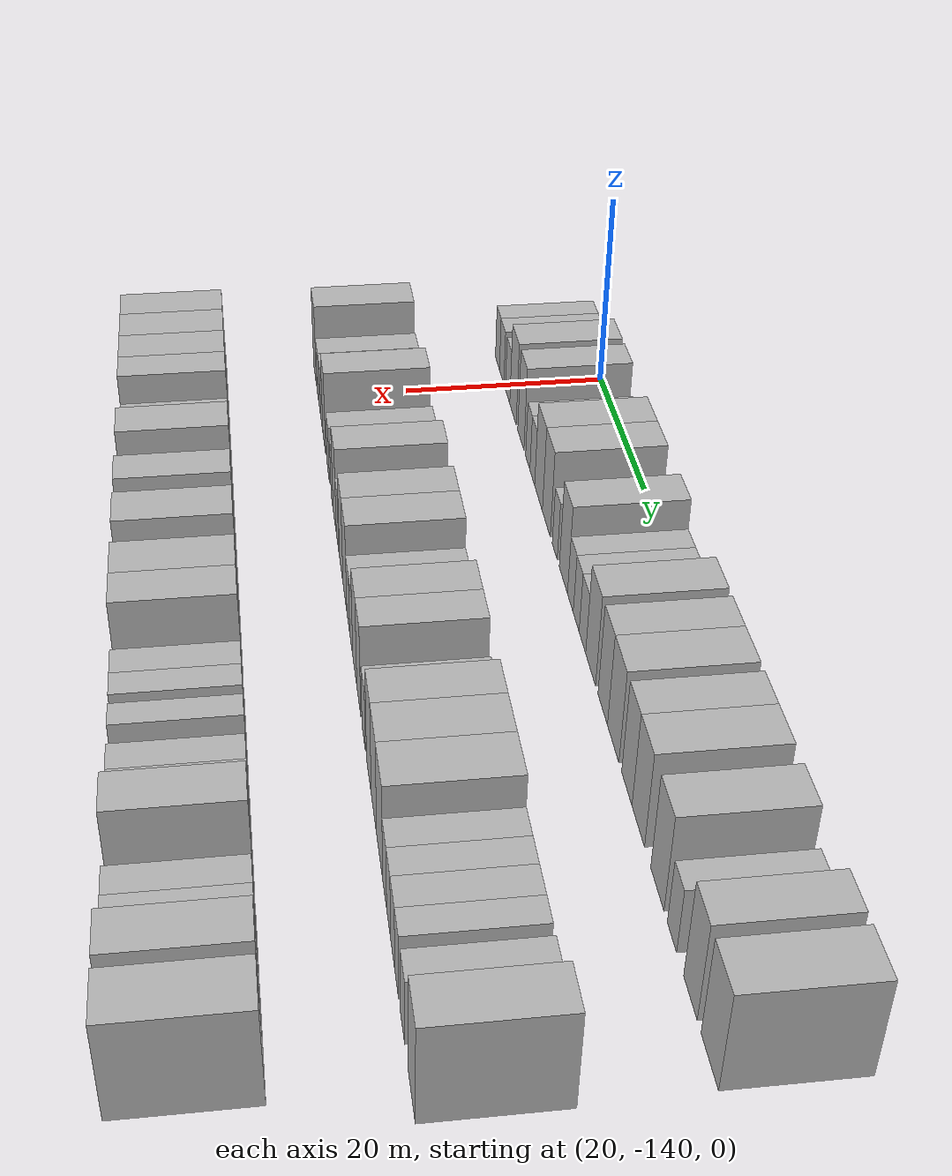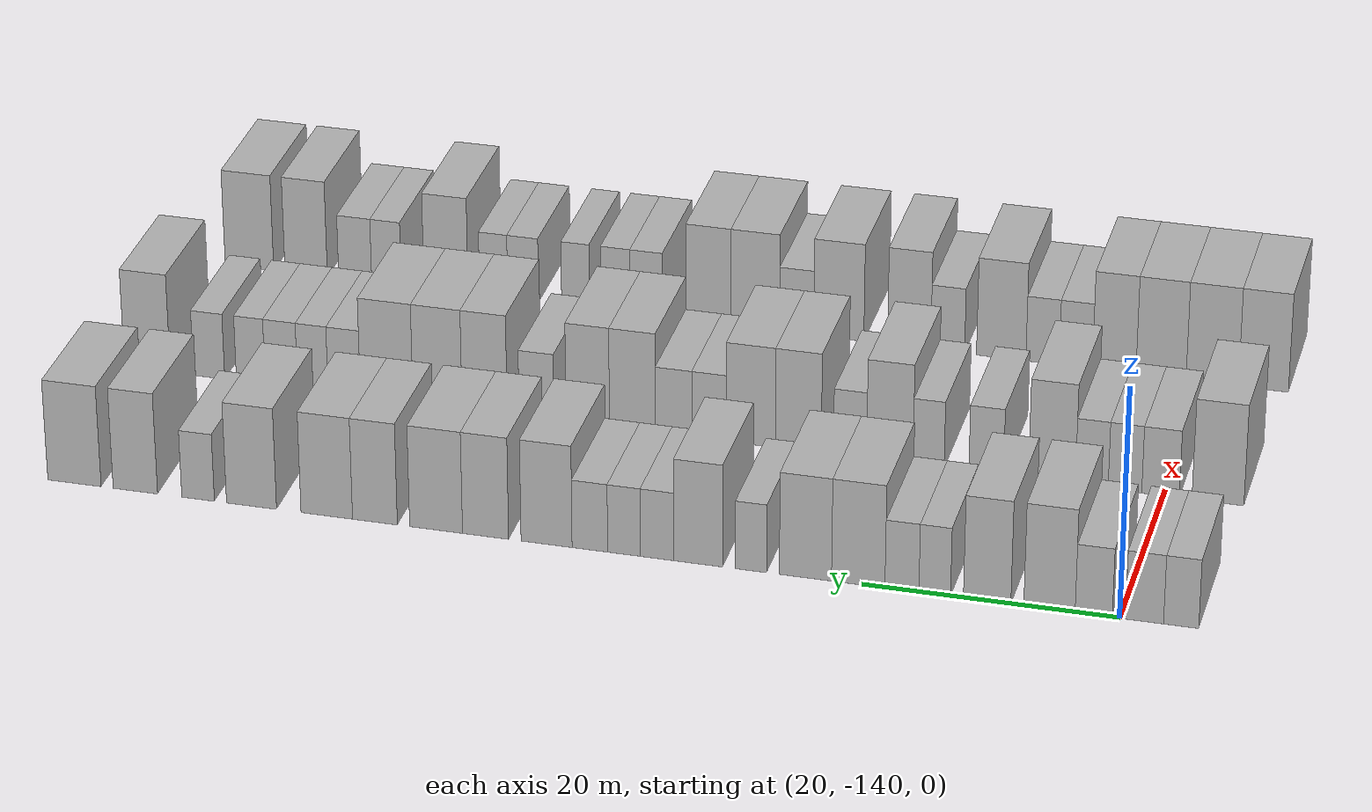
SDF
<sdf version="1.6">
 <world name="default">
  <model name="building_24">
   <static>1</static>
   <pose>25.0000 -144.6269 0 0.000000 0.000000 0.000000</pose>
   <link name="link">
    <pose>0 0 3.00 0 0 0</pose>
    <collision name="collision"><geometry><box><size>10.0000 2.6872 6.0000</size></box></geometry></collision>
    <visual name="visual">
     <cast_shadows>0</cast_shadows>
     <geometry><box><size>10.0000 2.6872 6.0000</size></box></geometry>
     <material>
      <script>
       <uri>model://HANNAS_wall/materials/scripts</uri>
       <uri>model://HANNAS_wall/materials/textures</uri>
       <name>vrc/HANNAS_wall</name>
      </script>
     </material>
    </visual>
   </link>
  </model>
  <model name="building_25">
   <static>1</static>
   <pose>25.0000 -141.8265 0 0.000000 0.000000 0.000000</pose>
   <link name="link">
    <pose>0 0 3.00 0 0 0</pose>
    <collision name="collision"><geometry><box><size>10.0000 2.9137 6.0000</size></box></geometry></collision>
    <visual name="visual">
     <cast_shadows>0</cast_shadows>
     <geometry><box><size>10.0000 2.9137 6.0000</size></box></geometry>
     <material>
      <script>
       <uri>model://HANNAS_wall/materials/scripts</uri>
       <uri>model://HANNAS_wall/materials/textures</uri>
       <name>vrc/HANNAS_wall</name>
      </script>
     </material>
    </visual>
   </link>
  </model>
  <model name="building_26">
   <static>1</static>
   <pose>25.0000 -137.9409 0 0.000000 0.000000 0.000000</pose>
   <link name="link">
    <pose>0 0 3.00 0 0 0</pose>
    <collision name="collision"><geometry><box><size>10.0000 2.8574 6.0000</size></box></geometry></collision>
    <visual name="visual">
     <cast_shadows>0</cast_shadows>
     <geometry><box><size>10.0000 2.8574 6.0000</size></box></geometry>
     <material>
      <script>
       <uri>model://HANNAS_wall/materials/scripts</uri>
       <uri>model://HANNAS_wall/materials/textures</uri>
       <name>vrc/HANNAS_wall</name>
      </script>
     </material>
    </visual>
   </link>
  </model>
  <model name="building_27">
   <static>1</static>
   <pose>25.0000 -134.5359 0 0.000000 0.000000 0.000000</pose>
   <link name="link">
    <pose>0 0 4.50 0 0 0</pose>
    <collision name="collision"><geometry><box><size>10.0000 3.9525 9.0000</size></box></geometry></collision>
    <visual name="visual">
     <cast_shadows>0</cast_shadows>
     <geometry><box><size>10.0000 3.9525 9.0000</size></box></geometry>
     <material>
      <script>
       <uri>model://HANNAS_wall/materials/scripts</uri>
       <uri>model://HANNAS_wall/materials/textures</uri>
       <name>vrc/HANNAS_wall</name>
      </script>
     </material>
    </visual>
   </link>
  </model>
  <model name="building_28">
   <static>1</static>
   <pose>25.0000 -129.7239 0 0.000000 0.000000 0.000000</pose>
   <link name="link">
    <pose>0 0 4.50 0 0 0</pose>
    <collision name="collision"><geometry><box><size>10.0000 3.6714 9.0000</size></box></geometry></collision>
    <visual name="visual">
     <cast_shadows>0</cast_shadows>
     <geometry><box><size>10.0000 3.6714 9.0000</size></box></geometry>
     <material>
      <script>
       <uri>model://HANNAS_wall/materials/scripts</uri>
       <uri>model://HANNAS_wall/materials/textures</uri>
       <name>vrc/HANNAS_wall</name>
      </script>
     </material>
    </visual>
   </link>
  </model>
  <model name="building_29">
   <static>1</static>
   <pose>25.0000 -125.6593 0 0.000000 0.000000 0.000000</pose>
   <link name="link">
    <pose>0 0 3.00 0 0 0</pose>
    <collision name="collision"><geometry><box><size>10.0000 2.4579 6.0000</size></box></geometry></collision>
    <visual name="visual">
     <cast_shadows>0</cast_shadows>
     <geometry><box><size>10.0000 2.4579 6.0000</size></box></geometry>
     <material>
      <script>
       <uri>model://HANNAS_wall/materials/scripts</uri>
       <uri>model://HANNAS_wall/materials/textures</uri>
       <name>vrc/HANNAS_wall</name>
      </script>
     </material>
    </visual>
   </link>
  </model>
  <model name="building_30">
   <static>1</static>
   <pose>25.0000 -123.1066 0 0.000000 0.000000 0.000000</pose>
   <link name="link">
    <pose>0 0 3.00 0 0 0</pose>
    <collision name="collision"><geometry><box><size>10.0000 2.6475 6.0000</size></box></geometry></collision>
    <visual name="visual">
     <cast_shadows>0</cast_shadows>
     <geometry><box><size>10.0000 2.6475 6.0000</size></box></geometry>
     <material>
      <script>
       <uri>model://HANNAS_wall/materials/scripts</uri>
       <uri>model://HANNAS_wall/materials/textures</uri>
       <name>vrc/HANNAS_wall</name>
      </script>
     </material>
    </visual>
   </link>
  </model>
  <model name="building_31">
   <static>1</static>
   <pose>25.0000 -119.6929 0 0.000000 0.000000 0.000000</pose>
   <link name="link">
    <pose>0 0 4.50 0 0 0</pose>
    <collision name="collision"><geometry><box><size>10.0000 4.1798 9.0000</size></box></geometry></collision>
    <visual name="visual">
     <cast_shadows>0</cast_shadows>
     <geometry><box><size>10.0000 4.1798 9.0000</size></box></geometry>
     <material>
      <script>
       <uri>model://HANNAS_wall/materials/scripts</uri>
       <uri>model://HANNAS_wall/materials/textures</uri>
       <name>vrc/HANNAS_wall</name>
      </script>
     </material>
    </visual>
   </link>
  </model>
  <model name="building_32">
   <static>1</static>
   <pose>25.0000 -115.5559 0 0.000000 0.000000 0.000000</pose>
   <link name="link">
    <pose>0 0 4.50 0 0 0</pose>
    <collision name="collision"><geometry><box><size>10.0000 4.0942 9.0000</size></box></geometry></collision>
    <visual name="visual">
     <cast_shadows>0</cast_shadows>
     <geometry><box><size>10.0000 4.0942 9.0000</size></box></geometry>
     <material>
      <script>
       <uri>model://HANNAS_wall/materials/scripts</uri>
       <uri>model://HANNAS_wall/materials/textures</uri>
       <name>vrc/HANNAS_wall</name>
      </script>
     </material>
    </visual>
   </link>
  </model>
  <model name="building_33">
   <static>1</static>
   <pose>25.0000 -111.2703 0 0.000000 0.000000 0.000000</pose>
   <link name="link">
    <pose>0 0 3.00 0 0 0</pose>
    <collision name="collision"><geometry><box><size>10.0000 2.4771 6.0000</size></box></geometry></collision>
    <visual name="visual">
     <cast_shadows>0</cast_shadows>
     <geometry><box><size>10.0000 2.4771 6.0000</size></box></geometry>
     <material>
      <script>
       <uri>model://HANNAS_wall/materials/scripts</uri>
       <uri>model://HANNAS_wall/materials/textures</uri>
       <name>vrc/HANNAS_wall</name>
      </script>
     </material>
    </visual>
   </link>
  </model>
  <model name="building_34">
   <static>1</static>
   <pose>25.0000 -107.0902 0 0.000000 0.000000 0.000000</pose>
   <link name="link">
    <pose>0 0 4.50 0 0 0</pose>
    <collision name="collision"><geometry><box><size>10.0000 3.8831 9.0000</size></box></geometry></collision>
    <visual name="visual">
     <cast_shadows>0</cast_shadows>
     <geometry><box><size>10.0000 3.8831 9.0000</size></box></geometry>
     <material>
      <script>
       <uri>model://HANNAS_wall/materials/scripts</uri>
       <uri>model://HANNAS_wall/materials/textures</uri>
       <name>vrc/HANNAS_wall</name>
      </script>
     </material>
    </visual>
   </link>
  </model>
  <model name="building_35">
   <static>1</static>
   <pose>25.0000 -103.8325 0 0.000000 0.000000 0.000000</pose>
   <link name="link">
    <pose>0 0 3.00 0 0 0</pose>
    <collision name="collision"><geometry><box><size>10.0000 2.6325 6.0000</size></box></geometry></collision>
    <visual name="visual">
     <cast_shadows>0</cast_shadows>
     <geometry><box><size>10.0000 2.6325 6.0000</size></box></geometry>
     <material>
      <script>
       <uri>model://HANNAS_wall/materials/scripts</uri>
       <uri>model://HANNAS_wall/materials/textures</uri>
       <name>vrc/HANNAS_wall</name>
      </script>
     </material>
    </visual>
   </link>
  </model>
  <model name="building_36">
   <static>1</static>
   <pose>25.0000 -101.2096 0 0.000000 0.000000 0.000000</pose>
   <link name="link">
    <pose>0 0 3.00 0 0 0</pose>
    <collision name="collision"><geometry><box><size>10.0000 2.6132 6.0000</size></box></geometry></collision>
    <visual name="visual">
     <cast_shadows>0</cast_shadows>
     <geometry><box><size>10.0000 2.6132 6.0000</size></box></geometry>
     <material>
      <script>
       <uri>model://HANNAS_wall/materials/scripts</uri>
       <uri>model://HANNAS_wall/materials/textures</uri>
       <name>vrc/HANNAS_wall</name>
      </script>
     </material>
    </visual>
   </link>
  </model>
  <model name="building_37">
   <static>1</static>
   <pose>25.0000 -98.4836 0 0.000000 0.000000 0.000000</pose>
   <link name="link">
    <pose>0 0 3.00 0 0 0</pose>
    <collision name="collision"><geometry><box><size>10.0000 2.8388 6.0000</size></box></geometry></collision>
    <visual name="visual">
     <cast_shadows>0</cast_shadows>
     <geometry><box><size>10.0000 2.8388 6.0000</size></box></geometry>
     <material>
      <script>
       <uri>model://HANNAS_wall/materials/scripts</uri>
       <uri>model://HANNAS_wall/materials/textures</uri>
       <name>vrc/HANNAS_wall</name>
      </script>
     </material>
    </visual>
   </link>
  </model>
  <model name="building_38">
   <static>1</static>
   <pose>25.0000 -95.0189 0 0.000000 0.000000 0.000000</pose>
   <link name="link">
    <pose>0 0 4.50 0 0 0</pose>
    <collision name="collision"><geometry><box><size>10.0000 4.0907 9.0000</size></box></geometry></collision>
    <visual name="visual">
     <cast_shadows>0</cast_shadows>
     <geometry><box><size>10.0000 4.0907 9.0000</size></box></geometry>
     <material>
      <script>
       <uri>model://HANNAS_wall/materials/scripts</uri>
       <uri>model://HANNAS_wall/materials/textures</uri>
       <name>vrc/HANNAS_wall</name>
      </script>
     </material>
    </visual>
   </link>
  </model>
  <model name="building_39">
   <static>1</static>
   <pose>25.0000 -90.1166 0 0.000000 0.000000 0.000000</pose>
   <link name="link">
    <pose>0 0 4.50 0 0 0</pose>
    <collision name="collision"><geometry><box><size>10.0000 3.7139 9.0000</size></box></geometry></collision>
    <visual name="visual">
     <cast_shadows>0</cast_shadows>
     <geometry><box><size>10.0000 3.7139 9.0000</size></box></geometry>
     <material>
      <script>
       <uri>model://HANNAS_wall/materials/scripts</uri>
       <uri>model://HANNAS_wall/materials/textures</uri>
       <name>vrc/HANNAS_wall</name>
      </script>
     </material>
    </visual>
   </link>
  </model>
  <model name="building_40">
   <static>1</static>
   <pose>25.0000 -86.1214 0 0.000000 0.000000 0.000000</pose>
   <link name="link">
    <pose>0 0 4.50 0 0 0</pose>
    <collision name="collision"><geometry><box><size>10.0000 4.2764 9.0000</size></box></geometry></collision>
    <visual name="visual">
     <cast_shadows>0</cast_shadows>
     <geometry><box><size>10.0000 4.2764 9.0000</size></box></geometry>
     <material>
      <script>
       <uri>model://HANNAS_wall/materials/scripts</uri>
       <uri>model://HANNAS_wall/materials/textures</uri>
       <name>vrc/HANNAS_wall</name>
      </script>
     </material>
    </visual>
   </link>
  </model>
  <model name="building_41">
   <static>1</static>
   <pose>25.0000 -81.1622 0 0.000000 0.000000 0.000000</pose>
   <link name="link">
    <pose>0 0 4.50 0 0 0</pose>
    <collision name="collision"><geometry><box><size>10.0000 3.6420 9.0000</size></box></geometry></collision>
    <visual name="visual">
     <cast_shadows>0</cast_shadows>
     <geometry><box><size>10.0000 3.6420 9.0000</size></box></geometry>
     <material>
      <script>
       <uri>model://HANNAS_wall/materials/scripts</uri>
       <uri>model://HANNAS_wall/materials/textures</uri>
       <name>vrc/HANNAS_wall</name>
      </script>
     </material>
    </visual>
   </link>
  </model>
  <model name="building_42">
   <static>1</static>
   <pose>25.0000 -77.2369 0 0.000000 0.000000 0.000000</pose>
   <link name="link">
    <pose>0 0 4.50 0 0 0</pose>
    <collision name="collision"><geometry><box><size>10.0000 4.2085 9.0000</size></box></geometry></collision>
    <visual name="visual">
     <cast_shadows>0</cast_shadows>
     <geometry><box><size>10.0000 4.2085 9.0000</size></box></geometry>
     <material>
      <script>
       <uri>model://HANNAS_wall/materials/scripts</uri>
       <uri>model://HANNAS_wall/materials/textures</uri>
       <name>vrc/HANNAS_wall</name>
      </script>
     </material>
    </visual>
   </link>
  </model>
  <model name="building_43">
   <static>1</static>
   <pose>25.0000 -71.0786 0 0.000000 0.000000 0.000000</pose>
   <link name="link">
    <pose>0 0 4.50 0 0 0</pose>
    <collision name="collision"><geometry><box><size>10.0000 4.1080 9.0000</size></box></geometry></collision>
    <visual name="visual">
     <cast_shadows>0</cast_shadows>
     <geometry><box><size>10.0000 4.1080 9.0000</size></box></geometry>
     <material>
      <script>
       <uri>model://HANNAS_wall/materials/scripts</uri>
       <uri>model://HANNAS_wall/materials/textures</uri>
       <name>vrc/HANNAS_wall</name>
      </script>
     </material>
    </visual>
   </link>
  </model>
  <model name="building_44">
   <static>1</static>
   <pose>25.0000 -66.6794 0 0.000000 0.000000 0.000000</pose>
   <link name="link">
    <pose>0 0 3.00 0 0 0</pose>
    <collision name="collision"><geometry><box><size>10.0000 2.6904 6.0000</size></box></geometry></collision>
    <visual name="visual">
     <cast_shadows>0</cast_shadows>
     <geometry><box><size>10.0000 2.6904 6.0000</size></box></geometry>
     <material>
      <script>
       <uri>model://HANNAS_wall/materials/scripts</uri>
       <uri>model://HANNAS_wall/materials/textures</uri>
       <name>vrc/HANNAS_wall</name>
      </script>
     </material>
    </visual>
   </link>
  </model>
  <model name="building_45">
   <static>1</static>
   <pose>25.0000 -61.4915 0 0.000000 0.000000 0.000000</pose>
   <link name="link">
    <pose>0 0 4.50 0 0 0</pose>
    <collision name="collision"><geometry><box><size>10.0000 3.6855 9.0000</size></box></geometry></collision>
    <visual name="visual">
     <cast_shadows>0</cast_shadows>
     <geometry><box><size>10.0000 3.6855 9.0000</size></box></geometry>
     <material>
      <script>
       <uri>model://HANNAS_wall/materials/scripts</uri>
       <uri>model://HANNAS_wall/materials/textures</uri>
       <name>vrc/HANNAS_wall</name>
      </script>
     </material>
    </visual>
   </link>
  </model>
  <model name="building_46">
   <static>1</static>
   <pose>25.0000 -56.4312 0 0.000000 0.000000 0.000000</pose>
   <link name="link">
    <pose>0 0 4.50 0 0 0</pose>
    <collision name="collision"><geometry><box><size>10.0000 4.4351 9.0000</size></box></geometry></collision>
    <visual name="visual">
     <cast_shadows>0</cast_shadows>
     <geometry><box><size>10.0000 4.4351 9.0000</size></box></geometry>
     <material>
      <script>
       <uri>model://HANNAS_wall/materials/scripts</uri>
       <uri>model://HANNAS_wall/materials/textures</uri>
       <name>vrc/HANNAS_wall</name>
      </script>
     </material>
    </visual>
   </link>
  </model>
  <model name="building_140">
   <static>1</static>
   <pose>44.0000 -144.3010 0 0.000000 0.000000 0.000000</pose>
   <link name="link">
    <pose>0 0 4.50 0 0 0</pose>
    <collision name="collision"><geometry><box><size>10.0000 4.1107 9.0000</size></box></geometry></collision>
    <visual name="visual">
     <cast_shadows>0</cast_shadows>
     <geometry><box><size>10.0000 4.1107 9.0000</size></box></geometry>
     <material>
      <script>
       <uri>model://HANNAS_wall/materials/scripts</uri>
       <uri>model://HANNAS_wall/materials/textures</uri>
       <name>vrc/HANNAS_wall</name>
      </script>
     </material>
    </visual>
   </link>
  </model>
  <model name="building_141">
   <static>1</static>
   <pose>44.0000 -139.7518 0 0.000000 0.000000 0.000000</pose>
   <link name="link">
    <pose>0 0 3.00 0 0 0</pose>
    <collision name="collision"><geometry><box><size>10.0000 2.9876 6.0000</size></box></geometry></collision>
    <visual name="visual">
     <cast_shadows>0</cast_shadows>
     <geometry><box><size>10.0000 2.9876 6.0000</size></box></geometry>
     <material>
      <script>
       <uri>model://HANNAS_wall/materials/scripts</uri>
       <uri>model://HANNAS_wall/materials/textures</uri>
       <name>vrc/HANNAS_wall</name>
      </script>
     </material>
    </visual>
   </link>
  </model>
  <model name="building_142">
   <static>1</static>
   <pose>44.0000 -136.9187 0 0.000000 0.000000 0.000000</pose>
   <link name="link">
    <pose>0 0 3.00 0 0 0</pose>
    <collision name="collision"><geometry><box><size>10.0000 2.6786 6.0000</size></box></geometry></collision>
    <visual name="visual">
     <cast_shadows>0</cast_shadows>
     <geometry><box><size>10.0000 2.6786 6.0000</size></box></geometry>
     <material>
      <script>
       <uri>model://HANNAS_wall/materials/scripts</uri>
       <uri>model://HANNAS_wall/materials/textures</uri>
       <name>vrc/HANNAS_wall</name>
      </script>
     </material>
    </visual>
   </link>
  </model>
  <model name="building_143">
   <static>1</static>
   <pose>44.0000 -134.2683 0 0.000000 0.000000 0.000000</pose>
   <link name="link">
    <pose>0 0 3.00 0 0 0</pose>
    <collision name="collision"><geometry><box><size>10.0000 2.6223 6.0000</size></box></geometry></collision>
    <visual name="visual">
     <cast_shadows>0</cast_shadows>
     <geometry><box><size>10.0000 2.6223 6.0000</size></box></geometry>
     <material>
      <script>
       <uri>model://HANNAS_wall/materials/scripts</uri>
       <uri>model://HANNAS_wall/materials/textures</uri>
       <name>vrc/HANNAS_wall</name>
      </script>
     </material>
    </visual>
   </link>
  </model>
  <model name="building_144">
   <static>1</static>
   <pose>44.0000 -131.0765 0 0.000000 0.000000 0.000000</pose>
   <link name="link">
    <pose>0 0 4.50 0 0 0</pose>
    <collision name="collision"><geometry><box><size>10.0000 3.7611 9.0000</size></box></geometry></collision>
    <visual name="visual">
     <cast_shadows>0</cast_shadows>
     <geometry><box><size>10.0000 3.7611 9.0000</size></box></geometry>
     <material>
      <script>
       <uri>model://HANNAS_wall/materials/scripts</uri>
       <uri>model://HANNAS_wall/materials/textures</uri>
       <name>vrc/HANNAS_wall</name>
      </script>
     </material>
    </visual>
   </link>
  </model>
  <model name="building_145">
   <static>1</static>
   <pose>44.0000 -125.8027 0 0.000000 0.000000 0.000000</pose>
   <link name="link">
    <pose>0 0 3.00 0 0 0</pose>
    <collision name="collision"><geometry><box><size>10.0000 2.7865 6.0000</size></box></geometry></collision>
    <visual name="visual">
     <cast_shadows>0</cast_shadows>
     <geometry><box><size>10.0000 2.7865 6.0000</size></box></geometry>
     <material>
      <script>
       <uri>model://HANNAS_wall/materials/scripts</uri>
       <uri>model://HANNAS_wall/materials/textures</uri>
       <name>vrc/HANNAS_wall</name>
      </script>
     </material>
    </visual>
   </link>
  </model>
  <model name="building_146">
   <static>1</static>
   <pose>44.0000 -121.1441 0 0.000000 0.000000 0.000000</pose>
   <link name="link">
    <pose>0 0 3.00 0 0 0</pose>
    <collision name="collision"><geometry><box><size>10.0000 2.5308 6.0000</size></box></geometry></collision>
    <visual name="visual">
     <cast_shadows>0</cast_shadows>
     <geometry><box><size>10.0000 2.5308 6.0000</size></box></geometry>
     <material>
      <script>
       <uri>model://HANNAS_wall/materials/scripts</uri>
       <uri>model://HANNAS_wall/materials/textures</uri>
       <name>vrc/HANNAS_wall</name>
      </script>
     </material>
    </visual>
   </link>
  </model>
  <model name="building_147">
   <static>1</static>
   <pose>44.0000 -118.0000 0 0.000000 0.000000 0.000000</pose>
   <link name="link">
    <pose>0 0 4.50 0 0 0</pose>
    <collision name="collision"><geometry><box><size>10.0000 3.7573 9.0000</size></box></geometry></collision>
    <visual name="visual">
     <cast_shadows>0</cast_shadows>
     <geometry><box><size>10.0000 3.7573 9.0000</size></box></geometry>
     <material>
      <script>
       <uri>model://HANNAS_wall/materials/scripts</uri>
       <uri>model://HANNAS_wall/materials/textures</uri>
       <name>vrc/HANNAS_wall</name>
      </script>
     </material>
    </visual>
   </link>
  </model>
  <model name="building_148">
   <static>1</static>
   <pose>44.0000 -114.7746 0 0.000000 0.000000 0.000000</pose>
   <link name="link">
    <pose>0 0 3.00 0 0 0</pose>
    <collision name="collision"><geometry><box><size>10.0000 2.6935 6.0000</size></box></geometry></collision>
    <visual name="visual">
     <cast_shadows>0</cast_shadows>
     <geometry><box><size>10.0000 2.6935 6.0000</size></box></geometry>
     <material>
      <script>
       <uri>model://HANNAS_wall/materials/scripts</uri>
       <uri>model://HANNAS_wall/materials/textures</uri>
       <name>vrc/HANNAS_wall</name>
      </script>
     </material>
    </visual>
   </link>
  </model>
  <model name="building_149">
   <static>1</static>
   <pose>44.0000 -110.5500 0 0.000000 0.000000 0.000000</pose>
   <link name="link">
    <pose>0 0 4.50 0 0 0</pose>
    <collision name="collision"><geometry><box><size>10.0000 3.7556 9.0000</size></box></geometry></collision>
    <visual name="visual">
     <cast_shadows>0</cast_shadows>
     <geometry><box><size>10.0000 3.7556 9.0000</size></box></geometry>
     <material>
      <script>
       <uri>model://HANNAS_wall/materials/scripts</uri>
       <uri>model://HANNAS_wall/materials/textures</uri>
       <name>vrc/HANNAS_wall</name>
      </script>
     </material>
    </visual>
   </link>
  </model>
  <model name="building_150">
   <static>1</static>
   <pose>44.0000 -106.6502 0 0.000000 0.000000 0.000000</pose>
   <link name="link">
    <pose>0 0 4.50 0 0 0</pose>
    <collision name="collision"><geometry><box><size>10.0000 4.0440 9.0000</size></box></geometry></collision>
    <visual name="visual">
     <cast_shadows>0</cast_shadows>
     <geometry><box><size>10.0000 4.0440 9.0000</size></box></geometry>
     <material>
      <script>
       <uri>model://HANNAS_wall/materials/scripts</uri>
       <uri>model://HANNAS_wall/materials/textures</uri>
       <name>vrc/HANNAS_wall</name>
      </script>
     </material>
    </visual>
   </link>
  </model>
  <model name="building_151">
   <static>1</static>
   <pose>44.0000 -103.2170 0 0.000000 0.000000 0.000000</pose>
   <link name="link">
    <pose>0 0 3.00 0 0 0</pose>
    <collision name="collision"><geometry><box><size>10.0000 2.8224 6.0000</size></box></geometry></collision>
    <visual name="visual">
     <cast_shadows>0</cast_shadows>
     <geometry><box><size>10.0000 2.8224 6.0000</size></box></geometry>
     <material>
      <script>
       <uri>model://HANNAS_wall/materials/scripts</uri>
       <uri>model://HANNAS_wall/materials/textures</uri>
       <name>vrc/HANNAS_wall</name>
      </script>
     </material>
    </visual>
   </link>
  </model>
  <model name="building_152">
   <static>1</static>
   <pose>44.0000 -100.3080 0 0.000000 0.000000 0.000000</pose>
   <link name="link">
    <pose>0 0 3.00 0 0 0</pose>
    <collision name="collision"><geometry><box><size>10.0000 2.9956 6.0000</size></box></geometry></collision>
    <visual name="visual">
     <cast_shadows>0</cast_shadows>
     <geometry><box><size>10.0000 2.9956 6.0000</size></box></geometry>
     <material>
      <script>
       <uri>model://HANNAS_wall/materials/scripts</uri>
       <uri>model://HANNAS_wall/materials/textures</uri>
       <name>vrc/HANNAS_wall</name>
      </script>
     </material>
    </visual>
   </link>
  </model>
  <model name="building_153">
   <static>1</static>
   <pose>44.0000 -96.9048 0 0.000000 0.000000 0.000000</pose>
   <link name="link">
    <pose>0 0 4.50 0 0 0</pose>
    <collision name="collision"><geometry><box><size>10.0000 3.8107 9.0000</size></box></geometry></collision>
    <visual name="visual">
     <cast_shadows>0</cast_shadows>
     <geometry><box><size>10.0000 3.8107 9.0000</size></box></geometry>
     <material>
      <script>
       <uri>model://HANNAS_wall/materials/scripts</uri>
       <uri>model://HANNAS_wall/materials/textures</uri>
       <name>vrc/HANNAS_wall</name>
      </script>
     </material>
    </visual>
   </link>
  </model>
  <model name="building_154">
   <static>1</static>
   <pose>44.0000 -93.1951 0 0.000000 0.000000 0.000000</pose>
   <link name="link">
    <pose>0 0 4.50 0 0 0</pose>
    <collision name="collision"><geometry><box><size>10.0000 3.6089 9.0000</size></box></geometry></collision>
    <visual name="visual">
     <cast_shadows>0</cast_shadows>
     <geometry><box><size>10.0000 3.6089 9.0000</size></box></geometry>
     <material>
      <script>
       <uri>model://HANNAS_wall/materials/scripts</uri>
       <uri>model://HANNAS_wall/materials/textures</uri>
       <name>vrc/HANNAS_wall</name>
      </script>
     </material>
    </visual>
   </link>
  </model>
  <model name="building_155">
   <static>1</static>
   <pose>44.0000 -88.9317 0 0.000000 0.000000 0.000000</pose>
   <link name="link">
    <pose>0 0 3.00 0 0 0</pose>
    <collision name="collision"><geometry><box><size>10.0000 2.9179 6.0000</size></box></geometry></collision>
    <visual name="visual">
     <cast_shadows>0</cast_shadows>
     <geometry><box><size>10.0000 2.9179 6.0000</size></box></geometry>
     <material>
      <script>
       <uri>model://HANNAS_wall/materials/scripts</uri>
       <uri>model://HANNAS_wall/materials/textures</uri>
       <name>vrc/HANNAS_wall</name>
      </script>
     </material>
    </visual>
   </link>
  </model>
  <model name="building_156">
   <static>1</static>
   <pose>44.0000 -84.5831 0 0.000000 0.000000 0.000000</pose>
   <link name="link">
    <pose>0 0 4.50 0 0 0</pose>
    <collision name="collision"><geometry><box><size>10.0000 3.7794 9.0000</size></box></geometry></collision>
    <visual name="visual">
     <cast_shadows>0</cast_shadows>
     <geometry><box><size>10.0000 3.7794 9.0000</size></box></geometry>
     <material>
      <script>
       <uri>model://HANNAS_wall/materials/scripts</uri>
       <uri>model://HANNAS_wall/materials/textures</uri>
       <name>vrc/HANNAS_wall</name>
      </script>
     </material>
    </visual>
   </link>
  </model>
  <model name="building_157">
   <static>1</static>
   <pose>44.0000 -80.6263 0 0.000000 0.000000 0.000000</pose>
   <link name="link">
    <pose>0 0 4.50 0 0 0</pose>
    <collision name="collision"><geometry><box><size>10.0000 4.1342 9.0000</size></box></geometry></collision>
    <visual name="visual">
     <cast_shadows>0</cast_shadows>
     <geometry><box><size>10.0000 4.1342 9.0000</size></box></geometry>
     <material>
      <script>
       <uri>model://HANNAS_wall/materials/scripts</uri>
       <uri>model://HANNAS_wall/materials/textures</uri>
       <name>vrc/HANNAS_wall</name>
      </script>
     </material>
    </visual>
   </link>
  </model>
  <model name="building_158">
   <static>1</static>
   <pose>44.0000 -76.3377 0 0.000000 0.000000 0.000000</pose>
   <link name="link">
    <pose>0 0 4.50 0 0 0</pose>
    <collision name="collision"><geometry><box><size>10.0000 4.4430 9.0000</size></box></geometry></collision>
    <visual name="visual">
     <cast_shadows>0</cast_shadows>
     <geometry><box><size>10.0000 4.4430 9.0000</size></box></geometry>
     <material>
      <script>
       <uri>model://HANNAS_wall/materials/scripts</uri>
       <uri>model://HANNAS_wall/materials/textures</uri>
       <name>vrc/HANNAS_wall</name>
      </script>
     </material>
    </visual>
   </link>
  </model>
  <model name="building_159">
   <static>1</static>
   <pose>44.0000 -72.7444 0 0.000000 0.000000 0.000000</pose>
   <link name="link">
    <pose>0 0 3.00 0 0 0</pose>
    <collision name="collision"><geometry><box><size>10.0000 2.7437 6.0000</size></box></geometry></collision>
    <visual name="visual">
     <cast_shadows>0</cast_shadows>
     <geometry><box><size>10.0000 2.7437 6.0000</size></box></geometry>
     <material>
      <script>
       <uri>model://HANNAS_wall/materials/scripts</uri>
       <uri>model://HANNAS_wall/materials/textures</uri>
       <name>vrc/HANNAS_wall</name>
      </script>
     </material>
    </visual>
   </link>
  </model>
  <model name="building_160">
   <static>1</static>
   <pose>44.0000 -70.0771 0 0.000000 0.000000 0.000000</pose>
   <link name="link">
    <pose>0 0 3.00 0 0 0</pose>
    <collision name="collision"><geometry><box><size>10.0000 2.5908 6.0000</size></box></geometry></collision>
    <visual name="visual">
     <cast_shadows>0</cast_shadows>
     <geometry><box><size>10.0000 2.5908 6.0000</size></box></geometry>
     <material>
      <script>
       <uri>model://HANNAS_wall/materials/scripts</uri>
       <uri>model://HANNAS_wall/materials/textures</uri>
       <name>vrc/HANNAS_wall</name>
      </script>
     </material>
    </visual>
   </link>
  </model>
  <model name="building_161">
   <static>1</static>
   <pose>44.0000 -67.4007 0 0.000000 0.000000 0.000000</pose>
   <link name="link">
    <pose>0 0 3.00 0 0 0</pose>
    <collision name="collision"><geometry><box><size>10.0000 2.7620 6.0000</size></box></geometry></collision>
    <visual name="visual">
     <cast_shadows>0</cast_shadows>
     <geometry><box><size>10.0000 2.7620 6.0000</size></box></geometry>
     <material>
      <script>
       <uri>model://HANNAS_wall/materials/scripts</uri>
       <uri>model://HANNAS_wall/materials/textures</uri>
       <name>vrc/HANNAS_wall</name>
      </script>
     </material>
    </visual>
   </link>
  </model>
  <model name="building_162">
   <static>1</static>
   <pose>44.0000 -64.7897 0 0.000000 0.000000 0.000000</pose>
   <link name="link">
    <pose>0 0 3.00 0 0 0</pose>
    <collision name="collision"><geometry><box><size>10.0000 2.4602 6.0000</size></box></geometry></collision>
    <visual name="visual">
     <cast_shadows>0</cast_shadows>
     <geometry><box><size>10.0000 2.4602 6.0000</size></box></geometry>
     <material>
      <script>
       <uri>model://HANNAS_wall/materials/scripts</uri>
       <uri>model://HANNAS_wall/materials/textures</uri>
       <name>vrc/HANNAS_wall</name>
      </script>
     </material>
    </visual>
   </link>
  </model>
  <model name="building_163">
   <static>1</static>
   <pose>44.0000 -61.2254 0 0.000000 0.000000 0.000000</pose>
   <link name="link">
    <pose>0 0 3.00 0 0 0</pose>
    <collision name="collision"><geometry><box><size>10.0000 2.6683 6.0000</size></box></geometry></collision>
    <visual name="visual">
     <cast_shadows>0</cast_shadows>
     <geometry><box><size>10.0000 2.6683 6.0000</size></box></geometry>
     <material>
      <script>
       <uri>model://HANNAS_wall/materials/scripts</uri>
       <uri>model://HANNAS_wall/materials/textures</uri>
       <name>vrc/HANNAS_wall</name>
      </script>
     </material>
    </visual>
   </link>
  </model>
  <model name="building_164">
   <static>1</static>
   <pose>44.0000 -55.9189 0 0.000000 0.000000 0.000000</pose>
   <link name="link">
    <pose>0 0 4.50 0 0 0</pose>
    <collision name="collision"><geometry><box><size>10.0000 3.9446 9.0000</size></box></geometry></collision>
    <visual name="visual">
     <cast_shadows>0</cast_shadows>
     <geometry><box><size>10.0000 3.9446 9.0000</size></box></geometry>
     <material>
      <script>
       <uri>model://HANNAS_wall/materials/scripts</uri>
       <uri>model://HANNAS_wall/materials/textures</uri>
       <name>vrc/HANNAS_wall</name>
      </script>
     </material>
    </visual>
   </link>
  </model>
  <model name="building_259">
   <static>1</static>
   <pose>63.0000 -144.9085 0 0.000000 0.000000 0.000000</pose>
   <link name="link">
    <pose>0 0 4.50 0 0 0</pose>
    <collision name="collision"><geometry><box><size>10.0000 4.1007 9.0000</size></box></geometry></collision>
    <visual name="visual">
     <cast_shadows>0</cast_shadows>
     <geometry><box><size>10.0000 4.1007 9.0000</size></box></geometry>
     <material>
      <script>
       <uri>model://HANNAS_wall/materials/scripts</uri>
       <uri>model://HANNAS_wall/materials/textures</uri>
       <name>vrc/HANNAS_wall</name>
      </script>
     </material>
    </visual>
   </link>
  </model>
  <model name="building_260">
   <static>1</static>
   <pose>63.0000 -140.7063 0 0.000000 0.000000 0.000000</pose>
   <link name="link">
    <pose>0 0 4.50 0 0 0</pose>
    <collision name="collision"><geometry><box><size>10.0000 4.3036 9.0000</size></box></geometry></collision>
    <visual name="visual">
     <cast_shadows>0</cast_shadows>
     <geometry><box><size>10.0000 4.3036 9.0000</size></box></geometry>
     <material>
      <script>
       <uri>model://HANNAS_wall/materials/scripts</uri>
       <uri>model://HANNAS_wall/materials/textures</uri>
       <name>vrc/HANNAS_wall</name>
      </script>
     </material>
    </visual>
   </link>
  </model>
  <model name="building_261">
   <static>1</static>
   <pose>63.0000 -136.4877 0 0.000000 0.000000 0.000000</pose>
   <link name="link">
    <pose>0 0 4.50 0 0 0</pose>
    <collision name="collision"><geometry><box><size>10.0000 4.1336 9.0000</size></box></geometry></collision>
    <visual name="visual">
     <cast_shadows>0</cast_shadows>
     <geometry><box><size>10.0000 4.1336 9.0000</size></box></geometry>
     <material>
      <script>
       <uri>model://HANNAS_wall/materials/scripts</uri>
       <uri>model://HANNAS_wall/materials/textures</uri>
       <name>vrc/HANNAS_wall</name>
      </script>
     </material>
    </visual>
   </link>
  </model>
  <model name="building_262">
   <static>1</static>
   <pose>63.0000 -132.6144 0 0.000000 0.000000 0.000000</pose>
   <link name="link">
    <pose>0 0 4.50 0 0 0</pose>
    <collision name="collision"><geometry><box><size>10.0000 3.6129 9.0000</size></box></geometry></collision>
    <visual name="visual">
     <cast_shadows>0</cast_shadows>
     <geometry><box><size>10.0000 3.6129 9.0000</size></box></geometry>
     <material>
      <script>
       <uri>model://HANNAS_wall/materials/scripts</uri>
       <uri>model://HANNAS_wall/materials/textures</uri>
       <name>vrc/HANNAS_wall</name>
      </script>
     </material>
    </visual>
   </link>
  </model>
  <model name="building_263">
   <static>1</static>
   <pose>63.0000 -129.4289 0 0.000000 0.000000 0.000000</pose>
   <link name="link">
    <pose>0 0 3.00 0 0 0</pose>
    <collision name="collision"><geometry><box><size>10.0000 2.7582 6.0000</size></box></geometry></collision>
    <visual name="visual">
     <cast_shadows>0</cast_shadows>
     <geometry><box><size>10.0000 2.7582 6.0000</size></box></geometry>
     <material>
      <script>
       <uri>model://HANNAS_wall/materials/scripts</uri>
       <uri>model://HANNAS_wall/materials/textures</uri>
       <name>vrc/HANNAS_wall</name>
      </script>
     </material>
    </visual>
   </link>
  </model>
  <model name="building_264">
   <static>1</static>
   <pose>63.0000 -126.6604 0 0.000000 0.000000 0.000000</pose>
   <link name="link">
    <pose>0 0 3.00 0 0 0</pose>
    <collision name="collision"><geometry><box><size>10.0000 2.7786 6.0000</size></box></geometry></collision>
    <visual name="visual">
     <cast_shadows>0</cast_shadows>
     <geometry><box><size>10.0000 2.7786 6.0000</size></box></geometry>
     <material>
      <script>
       <uri>model://HANNAS_wall/materials/scripts</uri>
       <uri>model://HANNAS_wall/materials/textures</uri>
       <name>vrc/HANNAS_wall</name>
      </script>
     </material>
    </visual>
   </link>
  </model>
  <model name="building_265">
   <static>1</static>
   <pose>63.0000 -123.2101 0 0.000000 0.000000 0.000000</pose>
   <link name="link">
    <pose>0 0 4.50 0 0 0</pose>
    <collision name="collision"><geometry><box><size>10.0000 4.1219 9.0000</size></box></geometry></collision>
    <visual name="visual">
     <cast_shadows>0</cast_shadows>
     <geometry><box><size>10.0000 4.1219 9.0000</size></box></geometry>
     <material>
      <script>
       <uri>model://HANNAS_wall/materials/scripts</uri>
       <uri>model://HANNAS_wall/materials/textures</uri>
       <name>vrc/HANNAS_wall</name>
      </script>
     </material>
    </visual>
   </link>
  </model>
  <model name="building_266">
   <static>1</static>
   <pose>63.0000 -118.7274 0 0.000000 0.000000 0.000000</pose>
   <link name="link">
    <pose>0 0 3.00 0 0 0</pose>
    <collision name="collision"><geometry><box><size>10.0000 2.8436 6.0000</size></box></geometry></collision>
    <visual name="visual">
     <cast_shadows>0</cast_shadows>
     <geometry><box><size>10.0000 2.8436 6.0000</size></box></geometry>
     <material>
      <script>
       <uri>model://HANNAS_wall/materials/scripts</uri>
       <uri>model://HANNAS_wall/materials/textures</uri>
       <name>vrc/HANNAS_wall</name>
      </script>
     </material>
    </visual>
   </link>
  </model>
  <model name="building_267">
   <static>1</static>
   <pose>63.0000 -115.4856 0 0.000000 0.000000 0.000000</pose>
   <link name="link">
    <pose>0 0 4.50 0 0 0</pose>
    <collision name="collision"><geometry><box><size>10.0000 3.6400 9.0000</size></box></geometry></collision>
    <visual name="visual">
     <cast_shadows>0</cast_shadows>
     <geometry><box><size>10.0000 3.6400 9.0000</size></box></geometry>
     <material>
      <script>
       <uri>model://HANNAS_wall/materials/scripts</uri>
       <uri>model://HANNAS_wall/materials/textures</uri>
       <name>vrc/HANNAS_wall</name>
      </script>
     </material>
    </visual>
   </link>
  </model>
  <model name="building_268">
   <static>1</static>
   <pose>63.0000 -109.5452 0 0.000000 0.000000 0.000000</pose>
   <link name="link">
    <pose>0 0 4.50 0 0 0</pose>
    <collision name="collision"><geometry><box><size>10.0000 4.2409 9.0000</size></box></geometry></collision>
    <visual name="visual">
     <cast_shadows>0</cast_shadows>
     <geometry><box><size>10.0000 4.2409 9.0000</size></box></geometry>
     <material>
      <script>
       <uri>model://HANNAS_wall/materials/scripts</uri>
       <uri>model://HANNAS_wall/materials/textures</uri>
       <name>vrc/HANNAS_wall</name>
      </script>
     </material>
    </visual>
   </link>
  </model>
  <model name="building_269">
   <static>1</static>
   <pose>63.0000 -105.9711 0 0.000000 0.000000 0.000000</pose>
   <link name="link">
    <pose>0 0 3.00 0 0 0</pose>
    <collision name="collision"><geometry><box><size>10.0000 2.9073 6.0000</size></box></geometry></collision>
    <visual name="visual">
     <cast_shadows>0</cast_shadows>
     <geometry><box><size>10.0000 2.9073 6.0000</size></box></geometry>
     <material>
      <script>
       <uri>model://HANNAS_wall/materials/scripts</uri>
       <uri>model://HANNAS_wall/materials/textures</uri>
       <name>vrc/HANNAS_wall</name>
      </script>
     </material>
    </visual>
   </link>
  </model>
  <model name="building_270">
   <static>1</static>
   <pose>63.0000 -102.4382 0 0.000000 0.000000 0.000000</pose>
   <link name="link">
    <pose>0 0 4.50 0 0 0</pose>
    <collision name="collision"><geometry><box><size>10.0000 4.1584 9.0000</size></box></geometry></collision>
    <visual name="visual">
     <cast_shadows>0</cast_shadows>
     <geometry><box><size>10.0000 4.1584 9.0000</size></box></geometry>
     <material>
      <script>
       <uri>model://HANNAS_wall/materials/scripts</uri>
       <uri>model://HANNAS_wall/materials/textures</uri>
       <name>vrc/HANNAS_wall</name>
      </script>
     </material>
    </visual>
   </link>
  </model>
  <model name="building_271">
   <static>1</static>
   <pose>63.0000 -98.4324 0 0.000000 0.000000 0.000000</pose>
   <link name="link">
    <pose>0 0 4.50 0 0 0</pose>
    <collision name="collision"><geometry><box><size>10.0000 3.8531 9.0000</size></box></geometry></collision>
    <visual name="visual">
     <cast_shadows>0</cast_shadows>
     <geometry><box><size>10.0000 3.8531 9.0000</size></box></geometry>
     <material>
      <script>
       <uri>model://HANNAS_wall/materials/scripts</uri>
       <uri>model://HANNAS_wall/materials/textures</uri>
       <name>vrc/HANNAS_wall</name>
      </script>
     </material>
    </visual>
   </link>
  </model>
  <model name="building_272">
   <static>1</static>
   <pose>63.0000 -93.1186 0 0.000000 0.000000 0.000000</pose>
   <link name="link">
    <pose>0 0 3.00 0 0 0</pose>
    <collision name="collision"><geometry><box><size>10.0000 2.7745 6.0000</size></box></geometry></collision>
    <visual name="visual">
     <cast_shadows>0</cast_shadows>
     <geometry><box><size>10.0000 2.7745 6.0000</size></box></geometry>
     <material>
      <script>
       <uri>model://HANNAS_wall/materials/scripts</uri>
       <uri>model://HANNAS_wall/materials/textures</uri>
       <name>vrc/HANNAS_wall</name>
      </script>
     </material>
    </visual>
   </link>
  </model>
  <model name="building_273">
   <static>1</static>
   <pose>63.0000 -90.4746 0 0.000000 0.000000 0.000000</pose>
   <link name="link">
    <pose>0 0 3.00 0 0 0</pose>
    <collision name="collision"><geometry><box><size>10.0000 2.5136 6.0000</size></box></geometry></collision>
    <visual name="visual">
     <cast_shadows>0</cast_shadows>
     <geometry><box><size>10.0000 2.5136 6.0000</size></box></geometry>
     <material>
      <script>
       <uri>model://HANNAS_wall/materials/scripts</uri>
       <uri>model://HANNAS_wall/materials/textures</uri>
       <name>vrc/HANNAS_wall</name>
      </script>
     </material>
    </visual>
   </link>
  </model>
  <model name="building_274">
   <static>1</static>
   <pose>63.0000 -87.0172 0 0.000000 0.000000 0.000000</pose>
   <link name="link">
    <pose>0 0 3.00 0 0 0</pose>
    <collision name="collision"><geometry><box><size>10.0000 2.4011 6.0000</size></box></geometry></collision>
    <visual name="visual">
     <cast_shadows>0</cast_shadows>
     <geometry><box><size>10.0000 2.4011 6.0000</size></box></geometry>
     <material>
      <script>
       <uri>model://HANNAS_wall/materials/scripts</uri>
       <uri>model://HANNAS_wall/materials/textures</uri>
       <name>vrc/HANNAS_wall</name>
      </script>
     </material>
    </visual>
   </link>
  </model>
  <model name="building_275">
   <static>1</static>
   <pose>63.0000 -82.4786 0 0.000000 0.000000 0.000000</pose>
   <link name="link">
    <pose>0 0 3.00 0 0 0</pose>
    <collision name="collision"><geometry><box><size>10.0000 2.6762 6.0000</size></box></geometry></collision>
    <visual name="visual">
     <cast_shadows>0</cast_shadows>
     <geometry><box><size>10.0000 2.6762 6.0000</size></box></geometry>
     <material>
      <script>
       <uri>model://HANNAS_wall/materials/scripts</uri>
       <uri>model://HANNAS_wall/materials/textures</uri>
       <name>vrc/HANNAS_wall</name>
      </script>
     </material>
    </visual>
   </link>
  </model>
  <model name="building_276">
   <static>1</static>
   <pose>63.0000 -79.9168 0 0.000000 0.000000 0.000000</pose>
   <link name="link">
    <pose>0 0 3.00 0 0 0</pose>
    <collision name="collision"><geometry><box><size>10.0000 2.4473 6.0000</size></box></geometry></collision>
    <visual name="visual">
     <cast_shadows>0</cast_shadows>
     <geometry><box><size>10.0000 2.4473 6.0000</size></box></geometry>
     <material>
      <script>
       <uri>model://HANNAS_wall/materials/scripts</uri>
       <uri>model://HANNAS_wall/materials/textures</uri>
       <name>vrc/HANNAS_wall</name>
      </script>
     </material>
    </visual>
   </link>
  </model>
  <model name="building_277">
   <static>1</static>
   <pose>63.0000 -75.7639 0 0.000000 0.000000 0.000000</pose>
   <link name="link">
    <pose>0 0 4.50 0 0 0</pose>
    <collision name="collision"><geometry><box><size>10.0000 3.8584 9.0000</size></box></geometry></collision>
    <visual name="visual">
     <cast_shadows>0</cast_shadows>
     <geometry><box><size>10.0000 3.8584 9.0000</size></box></geometry>
     <material>
      <script>
       <uri>model://HANNAS_wall/materials/scripts</uri>
       <uri>model://HANNAS_wall/materials/textures</uri>
       <name>vrc/HANNAS_wall</name>
      </script>
     </material>
    </visual>
   </link>
  </model>
  <model name="building_278">
   <static>1</static>
   <pose>63.0000 -70.5378 0 0.000000 0.000000 0.000000</pose>
   <link name="link">
    <pose>0 0 3.00 0 0 0</pose>
    <collision name="collision"><geometry><box><size>10.0000 2.5939 6.0000</size></box></geometry></collision>
    <visual name="visual">
     <cast_shadows>0</cast_shadows>
     <geometry><box><size>10.0000 2.5939 6.0000</size></box></geometry>
     <material>
      <script>
       <uri>model://HANNAS_wall/materials/scripts</uri>
       <uri>model://HANNAS_wall/materials/textures</uri>
       <name>vrc/HANNAS_wall</name>
      </script>
     </material>
    </visual>
   </link>
  </model>
  <model name="building_279">
   <static>1</static>
   <pose>63.0000 -67.7896 0 0.000000 0.000000 0.000000</pose>
   <link name="link">
    <pose>0 0 3.00 0 0 0</pose>
    <collision name="collision"><geometry><box><size>10.0000 2.9024 6.0000</size></box></geometry></collision>
    <visual name="visual">
     <cast_shadows>0</cast_shadows>
     <geometry><box><size>10.0000 2.9024 6.0000</size></box></geometry>
     <material>
      <script>
       <uri>model://HANNAS_wall/materials/scripts</uri>
       <uri>model://HANNAS_wall/materials/textures</uri>
       <name>vrc/HANNAS_wall</name>
      </script>
     </material>
    </visual>
   </link>
  </model>
  <model name="building_280">
   <static>1</static>
   <pose>63.0000 -63.4635 0 0.000000 0.000000 0.000000</pose>
   <link name="link">
    <pose>0 0 4.50 0 0 0</pose>
    <collision name="collision"><geometry><box><size>10.0000 3.7497 9.0000</size></box></geometry></collision>
    <visual name="visual">
     <cast_shadows>0</cast_shadows>
     <geometry><box><size>10.0000 3.7497 9.0000</size></box></geometry>
     <material>
      <script>
       <uri>model://HANNAS_wall/materials/scripts</uri>
       <uri>model://HANNAS_wall/materials/textures</uri>
       <name>vrc/HANNAS_wall</name>
      </script>
     </material>
    </visual>
   </link>
  </model>
  <model name="building_281">
   <static>1</static>
   <pose>63.0000 -58.4367 0 0.000000 0.000000 0.000000</pose>
   <link name="link">
    <pose>0 0 4.50 0 0 0</pose>
    <collision name="collision"><geometry><box><size>10.0000 4.3038 9.0000</size></box></geometry></collision>
    <visual name="visual">
     <cast_shadows>0</cast_shadows>
     <geometry><box><size>10.0000 4.3038 9.0000</size></box></geometry>
     <material>
      <script>
       <uri>model://HANNAS_wall/materials/scripts</uri>
       <uri>model://HANNAS_wall/materials/textures</uri>
       <name>vrc/HANNAS_wall</name>
      </script>
     </material>
    </visual>
   </link>
  </model>
 </world>
</sdf>
